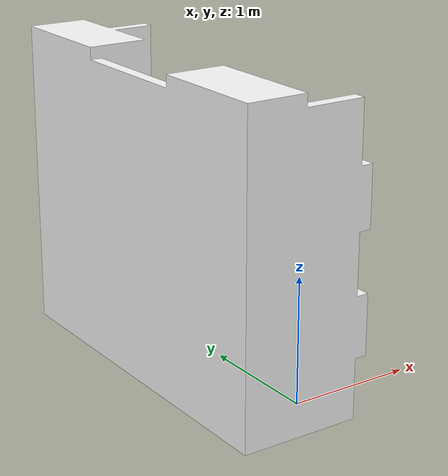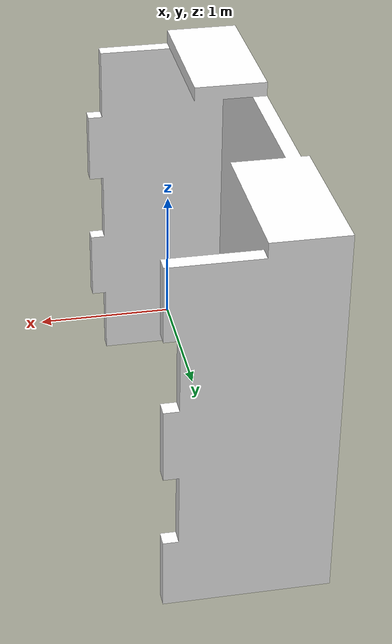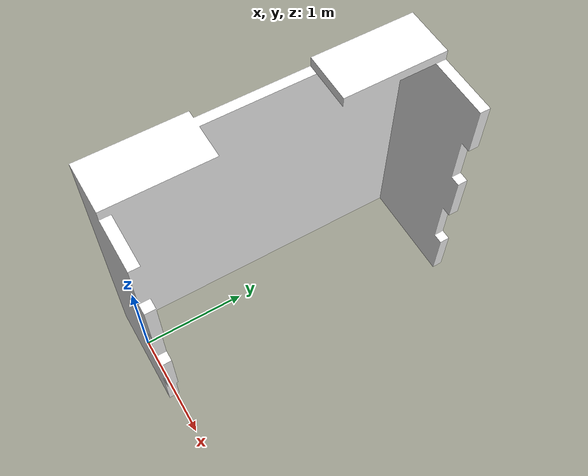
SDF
<?xml version="1.0" ?>
<sdf version="1.5">
  <model name="velma_alcove">
    <static>true</static>
    <link name="velma_alcove">
      <collision name="velma_alcove">
        <pose>0 0 0 0 0 0</pose>
        <geometry>
          <mesh>
            <uri>model://velma_alcove/meshes/model.dae</uri>
          </mesh>
        </geometry>
      </collision>

      <visual name="velma_alcove">
      <cast_shadows>true</cast_shadows>
        <geometry>
          <mesh>
          <uri>model://velma_alcove/meshes/model.dae</uri>
        </mesh>
        </geometry>
      </visual>
    </link>
  </model>
</sdf>
